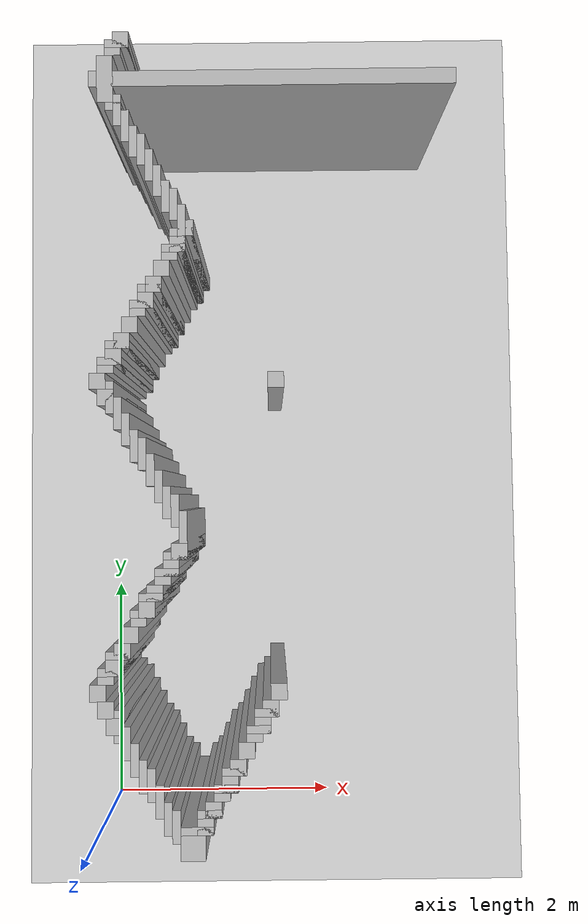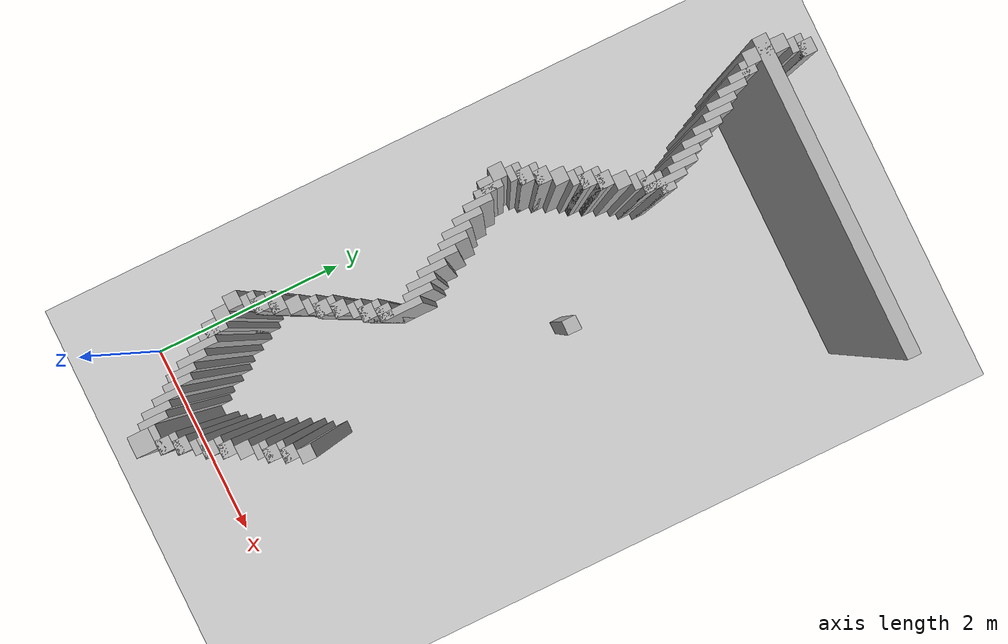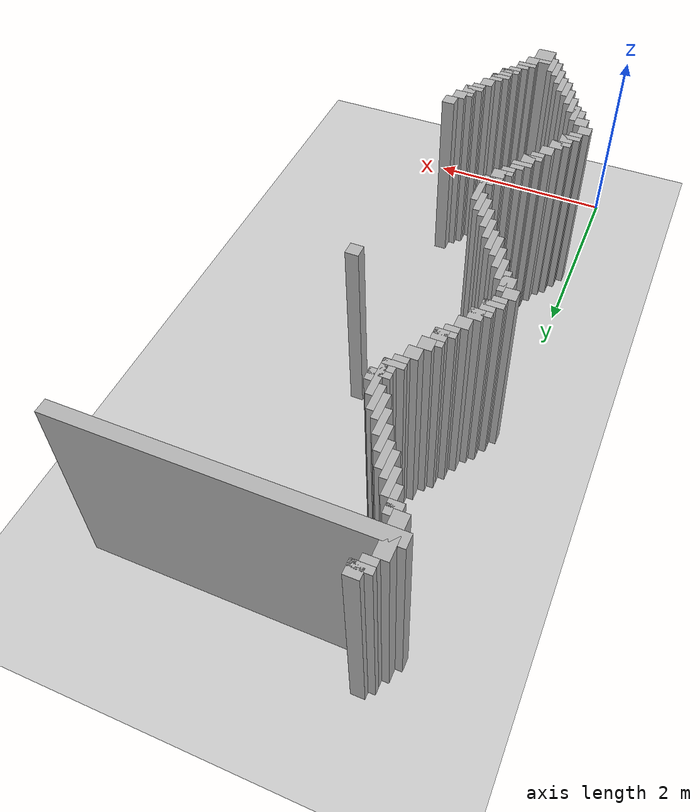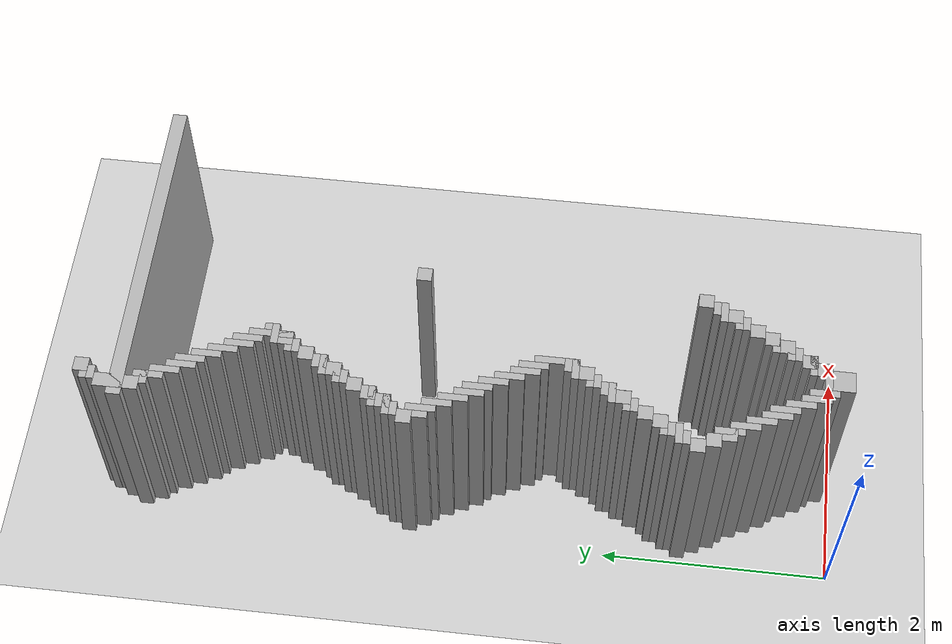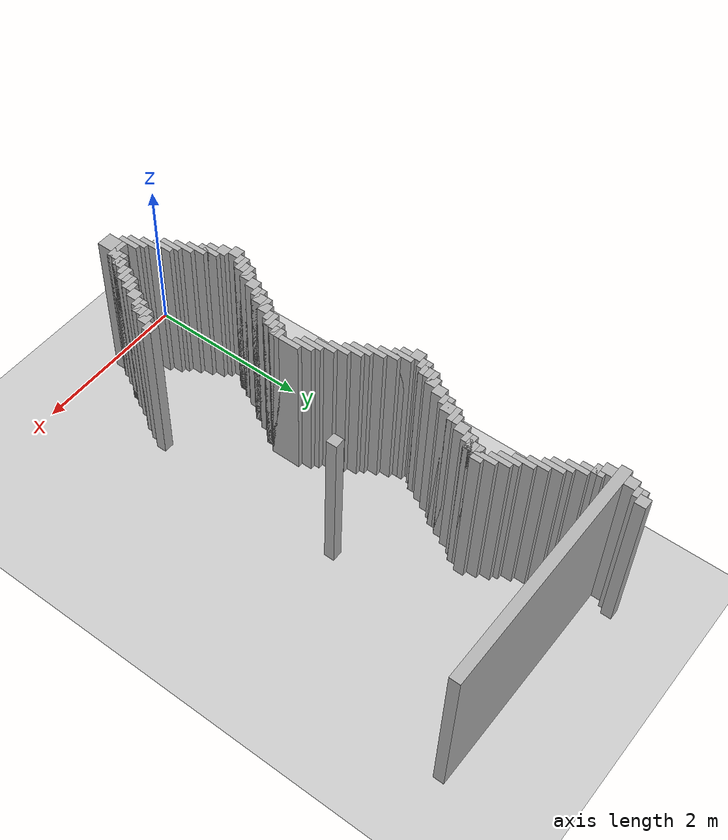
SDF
<sdf version="1.6">
 <world name="slam_world">
  <model name="ground_plane">
   <static>true</static>
   <link name="link">
    <collision name="collision">
     <geometry><plane><normal>0 0 1</normal><size>100 100</size></plane></geometry>
    </collision>
    <visual name="visual">
     <geometry><plane><normal>0 0 1</normal><size>100 100</size></plane></geometry>
     <material>
      <ambient>0.8 0.8 0.8 1</ambient>
      <diffuse>0.8 0.8 0.8 1</diffuse>
      <specular>0.8 0.8 0.8 1</specular>
     </material>
    </visual>
   </link>
  </model>
  <model name="wall_1703">
   <static>true</static>
   <pose>0.3191489361702127 6.51063829787234 1.0 0 0 0</pose>
   <link name="link">
    <collision name="collision">
     <geometry><box><size>0.1276595744680851 0.1276595744680851 2.0</size></box></geometry>
    </collision>
    <visual name="visual">
     <geometry><box><size>0.1276595744680851 0.1276595744680851 2.0</size></box></geometry>
     <material><ambient>0.5 0.5 0.5 1</ambient><diffuse>0.7 0.7 0.7 1</diffuse></material>
    </visual>
   </link>
  </model>
  <model name="wall_1707">
   <static>true</static>
   <pose>0.28723404255319146 6.478723404255319 1.0 0 0 0</pose>
   <link name="link">
    <collision name="collision">
     <geometry><box><size>0.19148936170212766 0.06382978723404255 2.0</size></box></geometry>
    </collision>
    <visual name="visual">
     <geometry><box><size>0.19148936170212766 0.06382978723404255 2.0</size></box></geometry>
     <material><ambient>0.5 0.5 0.5 1</ambient><diffuse>0.7 0.7 0.7 1</diffuse></material>
    </visual>
   </link>
  </model>
  <model name="wall_1715">
   <static>true</static>
   <pose>0.2553191489361702 6.414893617021276 1.0 0 0 0</pose>
   <link name="link">
    <collision name="collision">
     <geometry><box><size>0.1276595744680851 0.06382978723404255 2.0</size></box></geometry>
    </collision>
    <visual name="visual">
     <geometry><box><size>0.1276595744680851 0.06382978723404255 2.0</size></box></geometry>
     <material><ambient>0.5 0.5 0.5 1</ambient><diffuse>0.7 0.7 0.7 1</diffuse></material>
    </visual>
   </link>
  </model>
  <model name="wall_1719">
   <static>true</static>
   <pose>0.19148936170212766 6.191489361702128 1.0 0 0 0</pose>
   <link name="link">
    <collision name="collision">
     <geometry><box><size>0.1276595744680851 0.3829787234042553 2.0</size></box></geometry>
    </collision>
    <visual name="visual">
     <geometry><box><size>0.1276595744680851 0.3829787234042553 2.0</size></box></geometry>
     <material><ambient>0.5 0.5 0.5 1</ambient><diffuse>0.7 0.7 0.7 1</diffuse></material>
    </visual>
   </link>
  </model>
  <model name="wall_1727">
   <static>true</static>
   <pose>1.5319148936170213 6.191489361702128 1.0 0 0 0</pose>
   <link name="link">
    <collision name="collision">
     <geometry><box><size>2.936170212765957 0.1276595744680851 2.0</size></box></geometry>
    </collision>
    <visual name="visual">
     <geometry><box><size>2.936170212765957 0.1276595744680851 2.0</size></box></geometry>
     <material><ambient>0.5 0.5 0.5 1</ambient><diffuse>0.7 0.7 0.7 1</diffuse></material>
    </visual>
   </link>
  </model>
  <model name="wall_1742">
   <static>true</static>
   <pose>0.28723404255319146 5.936170212765957 1.0 0 0 0</pose>
   <link name="link">
    <collision name="collision">
     <geometry><box><size>0.06382978723404255 0.2553191489361702 2.0</size></box></geometry>
    </collision>
    <visual name="visual">
     <geometry><box><size>0.06382978723404255 0.2553191489361702 2.0</size></box></geometry>
     <material><ambient>0.5 0.5 0.5 1</ambient><diffuse>0.7 0.7 0.7 1</diffuse></material>
    </visual>
   </link>
  </model>
  <model name="wall_1749">
   <static>true</static>
   <pose>0.2553191489361702 5.968085106382978 1.0 0 0 0</pose>
   <link name="link">
    <collision name="collision">
     <geometry><box><size>0.1276595744680851 0.06382978723404255 2.0</size></box></geometry>
    </collision>
    <visual name="visual">
     <geometry><box><size>0.1276595744680851 0.06382978723404255 2.0</size></box></geometry>
     <material><ambient>0.5 0.5 0.5 1</ambient><diffuse>0.7 0.7 0.7 1</diffuse></material>
    </visual>
   </link>
  </model>
  <model name="wall_1758">
   <static>true</static>
   <pose>0.351063829787234 5.8085106382978715 1.0 0 0 0</pose>
   <link name="link">
    <collision name="collision">
     <geometry><box><size>0.06382978723404255 0.2553191489361702 2.0</size></box></geometry>
    </collision>
    <visual name="visual">
     <geometry><box><size>0.06382978723404255 0.2553191489361702 2.0</size></box></geometry>
     <material><ambient>0.5 0.5 0.5 1</ambient><diffuse>0.7 0.7 0.7 1</diffuse></material>
    </visual>
   </link>
  </model>
  <model name="wall_1767">
   <static>true</static>
   <pose>0.4148936170212766 5.680851063829786 1.0 0 0 0</pose>
   <link name="link">
    <collision name="collision">
     <geometry><box><size>0.06382978723404255 0.2553191489361702 2.0</size></box></geometry>
    </collision>
    <visual name="visual">
     <geometry><box><size>0.06382978723404255 0.2553191489361702 2.0</size></box></geometry>
     <material><ambient>0.5 0.5 0.5 1</ambient><diffuse>0.7 0.7 0.7 1</diffuse></material>
    </visual>
   </link>
  </model>
  <model name="wall_1776">
   <static>true</static>
   <pose>0.4787234042553191 5.617021276595744 1.0 0 0 0</pose>
   <link name="link">
    <collision name="collision">
     <geometry><box><size>0.06382978723404255 0.2553191489361702 2.0</size></box></geometry>
    </collision>
    <visual name="visual">
     <geometry><box><size>0.06382978723404255 0.2553191489361702 2.0</size></box></geometry>
     <material><ambient>0.5 0.5 0.5 1</ambient><diffuse>0.7 0.7 0.7 1</diffuse></material>
    </visual>
   </link>
  </model>
  <model name="wall_1791">
   <static>true</static>
   <pose>0.5425531914893617 5.489361702127659 1.0 0 0 0</pose>
   <link name="link">
    <collision name="collision">
     <geometry><box><size>0.06382978723404255 0.2553191489361702 2.0</size></box></geometry>
    </collision>
    <visual name="visual">
     <geometry><box><size>0.06382978723404255 0.2553191489361702 2.0</size></box></geometry>
     <material><ambient>0.5 0.5 0.5 1</ambient><diffuse>0.7 0.7 0.7 1</diffuse></material>
    </visual>
   </link>
  </model>
  <model name="wall_1805">
   <static>true</static>
   <pose>0.6063829787234042 5.361702127659574 1.0 0 0 0</pose>
   <link name="link">
    <collision name="collision">
     <geometry><box><size>0.06382978723404255 0.2553191489361702 2.0</size></box></geometry>
    </collision>
    <visual name="visual">
     <geometry><box><size>0.06382978723404255 0.2553191489361702 2.0</size></box></geometry>
     <material><ambient>0.5 0.5 0.5 1</ambient><diffuse>0.7 0.7 0.7 1</diffuse></material>
    </visual>
   </link>
  </model>
  <model name="wall_1819">
   <static>true</static>
   <pose>0.6702127659574467 5.234042553191489 1.0 0 0 0</pose>
   <link name="link">
    <collision name="collision">
     <geometry><box><size>0.06382978723404255 0.2553191489361702 2.0</size></box></geometry>
    </collision>
    <visual name="visual">
     <geometry><box><size>0.06382978723404255 0.2553191489361702 2.0</size></box></geometry>
     <material><ambient>0.5 0.5 0.5 1</ambient><diffuse>0.7 0.7 0.7 1</diffuse></material>
    </visual>
   </link>
  </model>
  <model name="wall_1828">
   <static>true</static>
   <pose>0.7340425531914893 5.170212765957446 1.0 0 0 0</pose>
   <link name="link">
    <collision name="collision">
     <geometry><box><size>0.06382978723404255 0.2553191489361702 2.0</size></box></geometry>
    </collision>
    <visual name="visual">
     <geometry><box><size>0.06382978723404255 0.2553191489361702 2.0</size></box></geometry>
     <material><ambient>0.5 0.5 0.5 1</ambient><diffuse>0.7 0.7 0.7 1</diffuse></material>
    </visual>
   </link>
  </model>
  <model name="wall_1842">
   <static>true</static>
   <pose>0.7978723404255319 4.978723404255319 1.0 0 0 0</pose>
   <link name="link">
    <collision name="collision">
     <geometry><box><size>0.06382978723404255 0.3829787234042553 2.0</size></box></geometry>
    </collision>
    <visual name="visual">
     <geometry><box><size>0.06382978723404255 0.3829787234042553 2.0</size></box></geometry>
     <material><ambient>0.5 0.5 0.5 1</ambient><diffuse>0.7 0.7 0.7 1</diffuse></material>
    </visual>
   </link>
  </model>
  <model name="wall_1856">
   <static>true</static>
   <pose>0.8617021276595744 4.978723404255319 1.0 0 0 0</pose>
   <link name="link">
    <collision name="collision">
     <geometry><box><size>0.06382978723404255 0.1276595744680851 2.0</size></box></geometry>
    </collision>
    <visual name="visual">
     <geometry><box><size>0.06382978723404255 0.1276595744680851 2.0</size></box></geometry>
     <material><ambient>0.5 0.5 0.5 1</ambient><diffuse>0.7 0.7 0.7 1</diffuse></material>
    </visual>
   </link>
  </model>
  <model name="wall_1862">
   <static>true</static>
   <pose>0.7978723404255319 4.946808510638298 1.0 0 0 0</pose>
   <link name="link">
    <collision name="collision">
     <geometry><box><size>0.19148936170212766 0.06382978723404255 2.0</size></box></geometry>
    </collision>
    <visual name="visual">
     <geometry><box><size>0.19148936170212766 0.06382978723404255 2.0</size></box></geometry>
     <material><ambient>0.5 0.5 0.5 1</ambient><diffuse>0.7 0.7 0.7 1</diffuse></material>
    </visual>
   </link>
  </model>
  <model name="wall_1867">
   <static>true</static>
   <pose>0.7659574468085106 4.8510638297872335 1.0 0 0 0</pose>
   <link name="link">
    <collision name="collision">
     <geometry><box><size>0.1276595744680851 0.1276595744680851 2.0</size></box></geometry>
    </collision>
    <visual name="visual">
     <geometry><box><size>0.1276595744680851 0.1276595744680851 2.0</size></box></geometry>
     <material><ambient>0.5 0.5 0.5 1</ambient><diffuse>0.7 0.7 0.7 1</diffuse></material>
    </visual>
   </link>
  </model>
  <model name="wall_1872">
   <static>true</static>
   <pose>0.7340425531914893 4.819148936170213 1.0 0 0 0</pose>
   <link name="link">
    <collision name="collision">
     <geometry><box><size>0.19148936170212766 0.06382978723404255 2.0</size></box></geometry>
    </collision>
    <visual name="visual">
     <geometry><box><size>0.19148936170212766 0.06382978723404255 2.0</size></box></geometry>
     <material><ambient>0.5 0.5 0.5 1</ambient><diffuse>0.7 0.7 0.7 1</diffuse></material>
    </visual>
   </link>
  </model>
  <model name="wall_1877">
   <static>true</static>
   <pose>0.702127659574468 4.75531914893617 1.0 0 0 0</pose>
   <link name="link">
    <collision name="collision">
     <geometry><box><size>0.1276595744680851 0.06382978723404255 2.0</size></box></geometry>
    </collision>
    <visual name="visual">
     <geometry><box><size>0.1276595744680851 0.06382978723404255 2.0</size></box></geometry>
     <material><ambient>0.5 0.5 0.5 1</ambient><diffuse>0.7 0.7 0.7 1</diffuse></material>
    </visual>
   </link>
  </model>
  <model name="wall_1883">
   <static>true</static>
   <pose>0.6382978723404255 4.659574468085106 1.0 0 0 0</pose>
   <link name="link">
    <collision name="collision">
     <geometry><box><size>0.1276595744680851 0.1276595744680851 2.0</size></box></geometry>
    </collision>
    <visual name="visual">
     <geometry><box><size>0.1276595744680851 0.1276595744680851 2.0</size></box></geometry>
     <material><ambient>0.5 0.5 0.5 1</ambient><diffuse>0.7 0.7 0.7 1</diffuse></material>
    </visual>
   </link>
  </model>
  <model name="wall_1889">
   <static>true</static>
   <pose>0.5744680851063829 4.531914893617021 1.0 0 0 0</pose>
   <link name="link">
    <collision name="collision">
     <geometry><box><size>0.1276595744680851 0.1276595744680851 2.0</size></box></geometry>
    </collision>
    <visual name="visual">
     <geometry><box><size>0.1276595744680851 0.1276595744680851 2.0</size></box></geometry>
     <material><ambient>0.5 0.5 0.5 1</ambient><diffuse>0.7 0.7 0.7 1</diffuse></material>
    </visual>
   </link>
  </model>
  <model name="wall_1895">
   <static>true</static>
   <pose>0.5425531914893617 4.5 1.0 0 0 0</pose>
   <link name="link">
    <collision name="collision">
     <geometry><box><size>0.19148936170212766 0.06382978723404255 2.0</size></box></geometry>
    </collision>
    <visual name="visual">
     <geometry><box><size>0.19148936170212766 0.06382978723404255 2.0</size></box></geometry>
     <material><ambient>0.5 0.5 0.5 1</ambient><diffuse>0.7 0.7 0.7 1</diffuse></material>
    </visual>
   </link>
  </model>
  <model name="wall_1901">
   <static>true</static>
   <pose>0.5106382978723404 4.404255319148936 1.0 0 0 0</pose>
   <link name="link">
    <collision name="collision">
     <geometry><box><size>0.1276595744680851 0.1276595744680851 2.0</size></box></geometry>
    </collision>
    <visual name="visual">
     <geometry><box><size>0.1276595744680851 0.1276595744680851 2.0</size></box></geometry>
     <material><ambient>0.5 0.5 0.5 1</ambient><diffuse>0.7 0.7 0.7 1</diffuse></material>
    </visual>
   </link>
  </model>
  <model name="wall_1907">
   <static>true</static>
   <pose>0.4787234042553191 4.372340425531915 1.0 0 0 0</pose>
   <link name="link">
    <collision name="collision">
     <geometry><box><size>0.19148936170212766 0.06382978723404255 2.0</size></box></geometry>
    </collision>
    <visual name="visual">
     <geometry><box><size>0.19148936170212766 0.06382978723404255 2.0</size></box></geometry>
     <material><ambient>0.5 0.5 0.5 1</ambient><diffuse>0.7 0.7 0.7 1</diffuse></material>
    </visual>
   </link>
  </model>
  <model name="wall_1913">
   <static>true</static>
   <pose>0.44680851063829785 4.308510638297872 1.0 0 0 0</pose>
   <link name="link">
    <collision name="collision">
     <geometry><box><size>0.1276595744680851 0.06382978723404255 2.0</size></box></geometry>
    </collision>
    <visual name="visual">
     <geometry><box><size>0.1276595744680851 0.06382978723404255 2.0</size></box></geometry>
     <material><ambient>0.5 0.5 0.5 1</ambient><diffuse>0.7 0.7 0.7 1</diffuse></material>
    </visual>
   </link>
  </model>
  <model name="wall_1918">
   <static>true</static>
   <pose>0.3829787234042553 4.212765957446808 1.0 0 0 0</pose>
   <link name="link">
    <collision name="collision">
     <geometry><box><size>0.1276595744680851 0.1276595744680851 2.0</size></box></geometry>
    </collision>
    <visual name="visual">
     <geometry><box><size>0.1276595744680851 0.1276595744680851 2.0</size></box></geometry>
     <material><ambient>0.5 0.5 0.5 1</ambient><diffuse>0.7 0.7 0.7 1</diffuse></material>
    </visual>
   </link>
  </model>
  <model name="wall_1924">
   <static>true</static>
   <pose>0.3191489361702127 4.085106382978723 1.0 0 0 0</pose>
   <link name="link">
    <collision name="collision">
     <geometry><box><size>0.1276595744680851 0.1276595744680851 2.0</size></box></geometry>
    </collision>
    <visual name="visual">
     <geometry><box><size>0.1276595744680851 0.1276595744680851 2.0</size></box></geometry>
     <material><ambient>0.5 0.5 0.5 1</ambient><diffuse>0.7 0.7 0.7 1</diffuse></material>
    </visual>
   </link>
  </model>
  <model name="wall_1930">
   <static>true</static>
   <pose>0.28723404255319146 4.053191489361701 1.0 0 0 0</pose>
   <link name="link">
    <collision name="collision">
     <geometry><box><size>0.19148936170212766 0.06382978723404255 2.0</size></box></geometry>
    </collision>
    <visual name="visual">
     <geometry><box><size>0.19148936170212766 0.06382978723404255 2.0</size></box></geometry>
     <material><ambient>0.5 0.5 0.5 1</ambient><diffuse>0.7 0.7 0.7 1</diffuse></material>
    </visual>
   </link>
  </model>
  <model name="wall_1936">
   <static>true</static>
   <pose>0.2553191489361702 3.957446808510638 1.0 0 0 0</pose>
   <link name="link">
    <collision name="collision">
     <geometry><box><size>0.1276595744680851 0.1276595744680851 2.0</size></box></geometry>
    </collision>
    <visual name="visual">
     <geometry><box><size>0.1276595744680851 0.1276595744680851 2.0</size></box></geometry>
     <material><ambient>0.5 0.5 0.5 1</ambient><diffuse>0.7 0.7 0.7 1</diffuse></material>
    </visual>
   </link>
  </model>
  <model name="wall_1941">
   <static>true</static>
   <pose>0.22340425531914893 3.9255319148936167 1.0 0 0 0</pose>
   <link name="link">
    <collision name="collision">
     <geometry><box><size>0.19148936170212766 0.06382978723404255 2.0</size></box></geometry>
    </collision>
    <visual name="visual">
     <geometry><box><size>0.19148936170212766 0.06382978723404255 2.0</size></box></geometry>
     <material><ambient>0.5 0.5 0.5 1</ambient><diffuse>0.7 0.7 0.7 1</diffuse></material>
    </visual>
   </link>
  </model>
  <model name="wall_1947">
   <static>true</static>
   <pose>0.19148936170212766 3.861702127659574 1.0 0 0 0</pose>
   <link name="link">
    <collision name="collision">
     <geometry><box><size>0.1276595744680851 0.06382978723404255 2.0</size></box></geometry>
    </collision>
    <visual name="visual">
     <geometry><box><size>0.1276595744680851 0.06382978723404255 2.0</size></box></geometry>
     <material><ambient>0.5 0.5 0.5 1</ambient><diffuse>0.7 0.7 0.7 1</diffuse></material>
    </visual>
   </link>
  </model>
  <model name="wall_1952">
   <static>true</static>
   <pose>0.1276595744680851 3.7659574468085104 1.0 0 0 0</pose>
   <link name="link">
    <collision name="collision">
     <geometry><box><size>0.1276595744680851 0.1276595744680851 2.0</size></box></geometry>
    </collision>
    <visual name="visual">
     <geometry><box><size>0.1276595744680851 0.1276595744680851 2.0</size></box></geometry>
     <material><ambient>0.5 0.5 0.5 1</ambient><diffuse>0.7 0.7 0.7 1</diffuse></material>
    </visual>
   </link>
  </model>
  <model name="wall_1953">
   <static>true</static>
   <pose>1.5319148936170213 3.7659574468085104 1.0 0 0 0</pose>
   <link name="link">
    <collision name="collision">
     <geometry><box><size>0.1276595744680851 0.1276595744680851 2.0</size></box></geometry>
    </collision>
    <visual name="visual">
     <geometry><box><size>0.1276595744680851 0.1276595744680851 2.0</size></box></geometry>
     <material><ambient>0.5 0.5 0.5 1</ambient><diffuse>0.7 0.7 0.7 1</diffuse></material>
    </visual>
   </link>
  </model>
  <model name="wall_1958">
   <static>true</static>
   <pose>0.22340425531914893 3.6382978723404253 1.0 0 0 0</pose>
   <link name="link">
    <collision name="collision">
     <geometry><box><size>0.06382978723404255 0.2553191489361702 2.0</size></box></geometry>
    </collision>
    <visual name="visual">
     <geometry><box><size>0.06382978723404255 0.2553191489361702 2.0</size></box></geometry>
     <material><ambient>0.5 0.5 0.5 1</ambient><diffuse>0.7 0.7 0.7 1</diffuse></material>
    </visual>
   </link>
  </model>
  <model name="wall_1962">
   <static>true</static>
   <pose>0.19148936170212766 3.6382978723404253 1.0 0 0 0</pose>
   <link name="link">
    <collision name="collision">
     <geometry><box><size>0.1276595744680851 0.1276595744680851 2.0</size></box></geometry>
    </collision>
    <visual name="visual">
     <geometry><box><size>0.1276595744680851 0.1276595744680851 2.0</size></box></geometry>
     <material><ambient>0.5 0.5 0.5 1</ambient><diffuse>0.7 0.7 0.7 1</diffuse></material>
    </visual>
   </link>
  </model>
  <model name="wall_1968">
   <static>true</static>
   <pose>0.28723404255319146 3.5106382978723403 1.0 0 0 0</pose>
   <link name="link">
    <collision name="collision">
     <geometry><box><size>0.06382978723404255 0.2553191489361702 2.0</size></box></geometry>
    </collision>
    <visual name="visual">
     <geometry><box><size>0.06382978723404255 0.2553191489361702 2.0</size></box></geometry>
     <material><ambient>0.5 0.5 0.5 1</ambient><diffuse>0.7 0.7 0.7 1</diffuse></material>
    </visual>
   </link>
  </model>
  <model name="wall_1979">
   <static>true</static>
   <pose>0.351063829787234 3.382978723404255 1.0 0 0 0</pose>
   <link name="link">
    <collision name="collision">
     <geometry><box><size>0.06382978723404255 0.2553191489361702 2.0</size></box></geometry>
    </collision>
    <visual name="visual">
     <geometry><box><size>0.06382978723404255 0.2553191489361702 2.0</size></box></geometry>
     <material><ambient>0.5 0.5 0.5 1</ambient><diffuse>0.7 0.7 0.7 1</diffuse></material>
    </visual>
   </link>
  </model>
  <model name="wall_1986">
   <static>true</static>
   <pose>0.4148936170212766 3.25531914893617 1.0 0 0 0</pose>
   <link name="link">
    <collision name="collision">
     <geometry><box><size>0.06382978723404255 0.2553191489361702 2.0</size></box></geometry>
    </collision>
    <visual name="visual">
     <geometry><box><size>0.06382978723404255 0.2553191489361702 2.0</size></box></geometry>
     <material><ambient>0.5 0.5 0.5 1</ambient><diffuse>0.7 0.7 0.7 1</diffuse></material>
    </visual>
   </link>
  </model>
  <model name="wall_1993">
   <static>true</static>
   <pose>0.4787234042553191 3.1914893617021276 1.0 0 0 0</pose>
   <link name="link">
    <collision name="collision">
     <geometry><box><size>0.06382978723404255 0.2553191489361702 2.0</size></box></geometry>
    </collision>
    <visual name="visual">
     <geometry><box><size>0.06382978723404255 0.2553191489361702 2.0</size></box></geometry>
     <material><ambient>0.5 0.5 0.5 1</ambient><diffuse>0.7 0.7 0.7 1</diffuse></material>
    </visual>
   </link>
  </model>
  <model name="wall_2001">
   <static>true</static>
   <pose>0.5425531914893617 3.0638297872340425 1.0 0 0 0</pose>
   <link name="link">
    <collision name="collision">
     <geometry><box><size>0.06382978723404255 0.2553191489361702 2.0</size></box></geometry>
    </collision>
    <visual name="visual">
     <geometry><box><size>0.06382978723404255 0.2553191489361702 2.0</size></box></geometry>
     <material><ambient>0.5 0.5 0.5 1</ambient><diffuse>0.7 0.7 0.7 1</diffuse></material>
    </visual>
   </link>
  </model>
  <model name="wall_2009">
   <static>true</static>
   <pose>0.6063829787234042 2.936170212765957 1.0 0 0 0</pose>
   <link name="link">
    <collision name="collision">
     <geometry><box><size>0.06382978723404255 0.2553191489361702 2.0</size></box></geometry>
    </collision>
    <visual name="visual">
     <geometry><box><size>0.06382978723404255 0.2553191489361702 2.0</size></box></geometry>
     <material><ambient>0.5 0.5 0.5 1</ambient><diffuse>0.7 0.7 0.7 1</diffuse></material>
    </visual>
   </link>
  </model>
  <model name="wall_2016">
   <static>true</static>
   <pose>0.6702127659574467 2.808510638297872 1.0 0 0 0</pose>
   <link name="link">
    <collision name="collision">
     <geometry><box><size>0.06382978723404255 0.2553191489361702 2.0</size></box></geometry>
    </collision>
    <visual name="visual">
     <geometry><box><size>0.06382978723404255 0.2553191489361702 2.0</size></box></geometry>
     <material><ambient>0.5 0.5 0.5 1</ambient><diffuse>0.7 0.7 0.7 1</diffuse></material>
    </visual>
   </link>
  </model>
  <model name="wall_2023">
   <static>true</static>
   <pose>0.7340425531914893 2.7446808510638294 1.0 0 0 0</pose>
   <link name="link">
    <collision name="collision">
     <geometry><box><size>0.06382978723404255 0.2553191489361702 2.0</size></box></geometry>
    </collision>
    <visual name="visual">
     <geometry><box><size>0.06382978723404255 0.2553191489361702 2.0</size></box></geometry>
     <material><ambient>0.5 0.5 0.5 1</ambient><diffuse>0.7 0.7 0.7 1</diffuse></material>
    </visual>
   </link>
  </model>
  <model name="wall_2031">
   <static>true</static>
   <pose>0.7978723404255319 2.553191489361702 1.0 0 0 0</pose>
   <link name="link">
    <collision name="collision">
     <geometry><box><size>0.06382978723404255 0.3829787234042553 2.0</size></box></geometry>
    </collision>
    <visual name="visual">
     <geometry><box><size>0.06382978723404255 0.3829787234042553 2.0</size></box></geometry>
     <material><ambient>0.5 0.5 0.5 1</ambient><diffuse>0.7 0.7 0.7 1</diffuse></material>
    </visual>
   </link>
  </model>
  <model name="wall_2046">
   <static>true</static>
   <pose>0.7659574468085106 2.4255319148936167 1.0 0 0 0</pose>
   <link name="link">
    <collision name="collision">
     <geometry><box><size>0.1276595744680851 0.1276595744680851 2.0</size></box></geometry>
    </collision>
    <visual name="visual">
     <geometry><box><size>0.1276595744680851 0.1276595744680851 2.0</size></box></geometry>
     <material><ambient>0.5 0.5 0.5 1</ambient><diffuse>0.7 0.7 0.7 1</diffuse></material>
    </visual>
   </link>
  </model>
  <model name="wall_2052">
   <static>true</static>
   <pose>0.7340425531914893 2.3936170212765955 1.0 0 0 0</pose>
   <link name="link">
    <collision name="collision">
     <geometry><box><size>0.19148936170212766 0.06382978723404255 2.0</size></box></geometry>
    </collision>
    <visual name="visual">
     <geometry><box><size>0.19148936170212766 0.06382978723404255 2.0</size></box></geometry>
     <material><ambient>0.5 0.5 0.5 1</ambient><diffuse>0.7 0.7 0.7 1</diffuse></material>
    </visual>
   </link>
  </model>
  <model name="wall_2058">
   <static>true</static>
   <pose>0.702127659574468 2.2978723404255317 1.0 0 0 0</pose>
   <link name="link">
    <collision name="collision">
     <geometry><box><size>0.1276595744680851 0.1276595744680851 2.0</size></box></geometry>
    </collision>
    <visual name="visual">
     <geometry><box><size>0.1276595744680851 0.1276595744680851 2.0</size></box></geometry>
     <material><ambient>0.5 0.5 0.5 1</ambient><diffuse>0.7 0.7 0.7 1</diffuse></material>
    </visual>
   </link>
  </model>
  <model name="wall_2063">
   <static>true</static>
   <pose>0.6702127659574467 2.2659574468085104 1.0 0 0 0</pose>
   <link name="link">
    <collision name="collision">
     <geometry><box><size>0.19148936170212766 0.06382978723404255 2.0</size></box></geometry>
    </collision>
    <visual name="visual">
     <geometry><box><size>0.19148936170212766 0.06382978723404255 2.0</size></box></geometry>
     <material><ambient>0.5 0.5 0.5 1</ambient><diffuse>0.7 0.7 0.7 1</diffuse></material>
    </visual>
   </link>
  </model>
  <model name="wall_2069">
   <static>true</static>
   <pose>0.6382978723404255 2.202127659574468 1.0 0 0 0</pose>
   <link name="link">
    <collision name="collision">
     <geometry><box><size>0.1276595744680851 0.06382978723404255 2.0</size></box></geometry>
    </collision>
    <visual name="visual">
     <geometry><box><size>0.1276595744680851 0.06382978723404255 2.0</size></box></geometry>
     <material><ambient>0.5 0.5 0.5 1</ambient><diffuse>0.7 0.7 0.7 1</diffuse></material>
    </visual>
   </link>
  </model>
  <model name="wall_2071">
   <static>true</static>
   <pose>0.5744680851063829 2.106382978723404 1.0 0 0 0</pose>
   <link name="link">
    <collision name="collision">
     <geometry><box><size>0.1276595744680851 0.1276595744680851 2.0</size></box></geometry>
    </collision>
    <visual name="visual">
     <geometry><box><size>0.1276595744680851 0.1276595744680851 2.0</size></box></geometry>
     <material><ambient>0.5 0.5 0.5 1</ambient><diffuse>0.7 0.7 0.7 1</diffuse></material>
    </visual>
   </link>
  </model>
  <model name="wall_2077">
   <static>true</static>
   <pose>0.5425531914893617 2.074468085106383 1.0 0 0 0</pose>
   <link name="link">
    <collision name="collision">
     <geometry><box><size>0.19148936170212766 0.06382978723404255 2.0</size></box></geometry>
    </collision>
    <visual name="visual">
     <geometry><box><size>0.19148936170212766 0.06382978723404255 2.0</size></box></geometry>
     <material><ambient>0.5 0.5 0.5 1</ambient><diffuse>0.7 0.7 0.7 1</diffuse></material>
    </visual>
   </link>
  </model>
  <model name="wall_2083">
   <static>true</static>
   <pose>0.5106382978723404 1.978723404255319 1.0 0 0 0</pose>
   <link name="link">
    <collision name="collision">
     <geometry><box><size>0.1276595744680851 0.1276595744680851 2.0</size></box></geometry>
    </collision>
    <visual name="visual">
     <geometry><box><size>0.1276595744680851 0.1276595744680851 2.0</size></box></geometry>
     <material><ambient>0.5 0.5 0.5 1</ambient><diffuse>0.7 0.7 0.7 1</diffuse></material>
    </visual>
   </link>
  </model>
  <model name="wall_2085">
   <static>true</static>
   <pose>0.4787234042553191 1.9468085106382977 1.0 0 0 0</pose>
   <link name="link">
    <collision name="collision">
     <geometry><box><size>0.19148936170212766 0.06382978723404255 2.0</size></box></geometry>
    </collision>
    <visual name="visual">
     <geometry><box><size>0.19148936170212766 0.06382978723404255 2.0</size></box></geometry>
     <material><ambient>0.5 0.5 0.5 1</ambient><diffuse>0.7 0.7 0.7 1</diffuse></material>
    </visual>
   </link>
  </model>
  <model name="wall_2091">
   <static>true</static>
   <pose>0.44680851063829785 1.8829787234042552 1.0 0 0 0</pose>
   <link name="link">
    <collision name="collision">
     <geometry><box><size>0.1276595744680851 0.06382978723404255 2.0</size></box></geometry>
    </collision>
    <visual name="visual">
     <geometry><box><size>0.1276595744680851 0.06382978723404255 2.0</size></box></geometry>
     <material><ambient>0.5 0.5 0.5 1</ambient><diffuse>0.7 0.7 0.7 1</diffuse></material>
    </visual>
   </link>
  </model>
  <model name="wall_2093">
   <static>true</static>
   <pose>0.3829787234042553 1.7872340425531914 1.0 0 0 0</pose>
   <link name="link">
    <collision name="collision">
     <geometry><box><size>0.1276595744680851 0.1276595744680851 2.0</size></box></geometry>
    </collision>
    <visual name="visual">
     <geometry><box><size>0.1276595744680851 0.1276595744680851 2.0</size></box></geometry>
     <material><ambient>0.5 0.5 0.5 1</ambient><diffuse>0.7 0.7 0.7 1</diffuse></material>
    </visual>
   </link>
  </model>
  <model name="wall_2099">
   <static>true</static>
   <pose>0.3191489361702127 1.6595744680851063 1.0 0 0 0</pose>
   <link name="link">
    <collision name="collision">
     <geometry><box><size>0.1276595744680851 0.1276595744680851 2.0</size></box></geometry>
    </collision>
    <visual name="visual">
     <geometry><box><size>0.1276595744680851 0.1276595744680851 2.0</size></box></geometry>
     <material><ambient>0.5 0.5 0.5 1</ambient><diffuse>0.7 0.7 0.7 1</diffuse></material>
    </visual>
   </link>
  </model>
  <model name="wall_2105">
   <static>true</static>
   <pose>0.28723404255319146 1.627659574468085 1.0 0 0 0</pose>
   <link name="link">
    <collision name="collision">
     <geometry><box><size>0.19148936170212766 0.06382978723404255 2.0</size></box></geometry>
    </collision>
    <visual name="visual">
     <geometry><box><size>0.19148936170212766 0.06382978723404255 2.0</size></box></geometry>
     <material><ambient>0.5 0.5 0.5 1</ambient><diffuse>0.7 0.7 0.7 1</diffuse></material>
    </visual>
   </link>
  </model>
  <model name="wall_2111">
   <static>true</static>
   <pose>0.2553191489361702 1.5319148936170213 1.0 0 0 0</pose>
   <link name="link">
    <collision name="collision">
     <geometry><box><size>0.1276595744680851 0.1276595744680851 2.0</size></box></geometry>
    </collision>
    <visual name="visual">
     <geometry><box><size>0.1276595744680851 0.1276595744680851 2.0</size></box></geometry>
     <material><ambient>0.5 0.5 0.5 1</ambient><diffuse>0.7 0.7 0.7 1</diffuse></material>
    </visual>
   </link>
  </model>
  <model name="wall_2113">
   <static>true</static>
   <pose>0.22340425531914893 1.4999999999999998 1.0 0 0 0</pose>
   <link name="link">
    <collision name="collision">
     <geometry><box><size>0.19148936170212766 0.06382978723404255 2.0</size></box></geometry>
    </collision>
    <visual name="visual">
     <geometry><box><size>0.19148936170212766 0.06382978723404255 2.0</size></box></geometry>
     <material><ambient>0.5 0.5 0.5 1</ambient><diffuse>0.7 0.7 0.7 1</diffuse></material>
    </visual>
   </link>
  </model>
  <model name="wall_2119">
   <static>true</static>
   <pose>0.19148936170212766 1.4361702127659572 1.0 0 0 0</pose>
   <link name="link">
    <collision name="collision">
     <geometry><box><size>0.1276595744680851 0.06382978723404255 2.0</size></box></geometry>
    </collision>
    <visual name="visual">
     <geometry><box><size>0.1276595744680851 0.06382978723404255 2.0</size></box></geometry>
     <material><ambient>0.5 0.5 0.5 1</ambient><diffuse>0.7 0.7 0.7 1</diffuse></material>
    </visual>
   </link>
  </model>
  <model name="wall_2121">
   <static>true</static>
   <pose>0.1276595744680851 1.3404255319148934 1.0 0 0 0</pose>
   <link name="link">
    <collision name="collision">
     <geometry><box><size>0.1276595744680851 0.1276595744680851 2.0</size></box></geometry>
    </collision>
    <visual name="visual">
     <geometry><box><size>0.1276595744680851 0.1276595744680851 2.0</size></box></geometry>
     <material><ambient>0.5 0.5 0.5 1</ambient><diffuse>0.7 0.7 0.7 1</diffuse></material>
    </visual>
   </link>
  </model>
  <model name="wall_2122">
   <static>true</static>
   <pose>1.5319148936170213 1.3404255319148934 1.0 0 0 0</pose>
   <link name="link">
    <collision name="collision">
     <geometry><box><size>0.1276595744680851 0.1276595744680851 2.0</size></box></geometry>
    </collision>
    <visual name="visual">
     <geometry><box><size>0.1276595744680851 0.1276595744680851 2.0</size></box></geometry>
     <material><ambient>0.5 0.5 0.5 1</ambient><diffuse>0.7 0.7 0.7 1</diffuse></material>
    </visual>
   </link>
  </model>
  <model name="wall_2132">
   <static>true</static>
   <pose>0.19148936170212766 1.2127659574468084 1.0 0 0 0</pose>
   <link name="link">
    <collision name="collision">
     <geometry><box><size>0.1276595744680851 0.1276595744680851 2.0</size></box></geometry>
    </collision>
    <visual name="visual">
     <geometry><box><size>0.1276595744680851 0.1276595744680851 2.0</size></box></geometry>
     <material><ambient>0.5 0.5 0.5 1</ambient><diffuse>0.7 0.7 0.7 1</diffuse></material>
    </visual>
   </link>
  </model>
  <model name="wall_2133">
   <static>true</static>
   <pose>1.4680851063829785 1.2127659574468084 1.0 0 0 0</pose>
   <link name="link">
    <collision name="collision">
     <geometry><box><size>0.1276595744680851 0.1276595744680851 2.0</size></box></geometry>
    </collision>
    <visual name="visual">
     <geometry><box><size>0.1276595744680851 0.1276595744680851 2.0</size></box></geometry>
     <material><ambient>0.5 0.5 0.5 1</ambient><diffuse>0.7 0.7 0.7 1</diffuse></material>
    </visual>
   </link>
  </model>
  <model name="wall_2140">
   <static>true</static>
   <pose>0.28723404255319146 1.0851063829787233 1.0 0 0 0</pose>
   <link name="link">
    <collision name="collision">
     <geometry><box><size>0.06382978723404255 0.2553191489361702 2.0</size></box></geometry>
    </collision>
    <visual name="visual">
     <geometry><box><size>0.06382978723404255 0.2553191489361702 2.0</size></box></geometry>
     <material><ambient>0.5 0.5 0.5 1</ambient><diffuse>0.7 0.7 0.7 1</diffuse></material>
    </visual>
   </link>
  </model>
  <model name="wall_2141">
   <static>true</static>
   <pose>1.4361702127659572 1.180851063829787 1.0 0 0 0</pose>
   <link name="link">
    <collision name="collision">
     <geometry><box><size>0.19148936170212766 0.06382978723404255 2.0</size></box></geometry>
    </collision>
    <visual name="visual">
     <geometry><box><size>0.19148936170212766 0.06382978723404255 2.0</size></box></geometry>
     <material><ambient>0.5 0.5 0.5 1</ambient><diffuse>0.7 0.7 0.7 1</diffuse></material>
    </visual>
   </link>
  </model>
  <model name="wall_2148">
   <static>true</static>
   <pose>0.2553191489361702 1.0851063829787233 1.0 0 0 0</pose>
   <link name="link">
    <collision name="collision">
     <geometry><box><size>0.1276595744680851 0.1276595744680851 2.0</size></box></geometry>
    </collision>
    <visual name="visual">
     <geometry><box><size>0.1276595744680851 0.1276595744680851 2.0</size></box></geometry>
     <material><ambient>0.5 0.5 0.5 1</ambient><diffuse>0.7 0.7 0.7 1</diffuse></material>
    </visual>
   </link>
  </model>
  <model name="wall_2149">
   <static>true</static>
   <pose>1.404255319148936 1.0851063829787233 1.0 0 0 0</pose>
   <link name="link">
    <collision name="collision">
     <geometry><box><size>0.1276595744680851 0.1276595744680851 2.0</size></box></geometry>
    </collision>
    <visual name="visual">
     <geometry><box><size>0.1276595744680851 0.1276595744680851 2.0</size></box></geometry>
     <material><ambient>0.5 0.5 0.5 1</ambient><diffuse>0.7 0.7 0.7 1</diffuse></material>
    </visual>
   </link>
  </model>
  <model name="wall_2155">
   <static>true</static>
   <pose>0.351063829787234 0.9574468085106382 1.0 0 0 0</pose>
   <link name="link">
    <collision name="collision">
     <geometry><box><size>0.06382978723404255 0.2553191489361702 2.0</size></box></geometry>
    </collision>
    <visual name="visual">
     <geometry><box><size>0.06382978723404255 0.2553191489361702 2.0</size></box></geometry>
     <material><ambient>0.5 0.5 0.5 1</ambient><diffuse>0.7 0.7 0.7 1</diffuse></material>
    </visual>
   </link>
  </model>
  <model name="wall_2156">
   <static>true</static>
   <pose>1.3723404255319147 1.053191489361702 1.0 0 0 0</pose>
   <link name="link">
    <collision name="collision">
     <geometry><box><size>0.19148936170212766 0.06382978723404255 2.0</size></box></geometry>
    </collision>
    <visual name="visual">
     <geometry><box><size>0.19148936170212766 0.06382978723404255 2.0</size></box></geometry>
     <material><ambient>0.5 0.5 0.5 1</ambient><diffuse>0.7 0.7 0.7 1</diffuse></material>
    </visual>
   </link>
  </model>
  <model name="wall_2163">
   <static>true</static>
   <pose>1.3404255319148934 0.9893617021276595 1.0 0 0 0</pose>
   <link name="link">
    <collision name="collision">
     <geometry><box><size>0.1276595744680851 0.06382978723404255 2.0</size></box></geometry>
    </collision>
    <visual name="visual">
     <geometry><box><size>0.1276595744680851 0.06382978723404255 2.0</size></box></geometry>
     <material><ambient>0.5 0.5 0.5 1</ambient><diffuse>0.7 0.7 0.7 1</diffuse></material>
    </visual>
   </link>
  </model>
  <model name="wall_2166">
   <static>true</static>
   <pose>0.4148936170212766 0.8297872340425532 1.0 0 0 0</pose>
   <link name="link">
    <collision name="collision">
     <geometry><box><size>0.06382978723404255 0.2553191489361702 2.0</size></box></geometry>
    </collision>
    <visual name="visual">
     <geometry><box><size>0.06382978723404255 0.2553191489361702 2.0</size></box></geometry>
     <material><ambient>0.5 0.5 0.5 1</ambient><diffuse>0.7 0.7 0.7 1</diffuse></material>
    </visual>
   </link>
  </model>
  <model name="wall_2167">
   <static>true</static>
   <pose>1.276595744680851 0.8936170212765957 1.0 0 0 0</pose>
   <link name="link">
    <collision name="collision">
     <geometry><box><size>0.1276595744680851 0.1276595744680851 2.0</size></box></geometry>
    </collision>
    <visual name="visual">
     <geometry><box><size>0.1276595744680851 0.1276595744680851 2.0</size></box></geometry>
     <material><ambient>0.5 0.5 0.5 1</ambient><diffuse>0.7 0.7 0.7 1</diffuse></material>
    </visual>
   </link>
  </model>
  <model name="wall_2174">
   <static>true</static>
   <pose>0.4787234042553191 0.702127659574468 1.0 0 0 0</pose>
   <link name="link">
    <collision name="collision">
     <geometry><box><size>0.06382978723404255 0.2553191489361702 2.0</size></box></geometry>
    </collision>
    <visual name="visual">
     <geometry><box><size>0.06382978723404255 0.2553191489361702 2.0</size></box></geometry>
     <material><ambient>0.5 0.5 0.5 1</ambient><diffuse>0.7 0.7 0.7 1</diffuse></material>
    </visual>
   </link>
  </model>
  <model name="wall_2175">
   <static>true</static>
   <pose>1.2127659574468084 0.7659574468085106 1.0 0 0 0</pose>
   <link name="link">
    <collision name="collision">
     <geometry><box><size>0.1276595744680851 0.1276595744680851 2.0</size></box></geometry>
    </collision>
    <visual name="visual">
     <geometry><box><size>0.1276595744680851 0.1276595744680851 2.0</size></box></geometry>
     <material><ambient>0.5 0.5 0.5 1</ambient><diffuse>0.7 0.7 0.7 1</diffuse></material>
    </visual>
   </link>
  </model>
  <model name="wall_2182">
   <static>true</static>
   <pose>0.5425531914893617 0.6382978723404255 1.0 0 0 0</pose>
   <link name="link">
    <collision name="collision">
     <geometry><box><size>0.06382978723404255 0.2553191489361702 2.0</size></box></geometry>
    </collision>
    <visual name="visual">
     <geometry><box><size>0.06382978723404255 0.2553191489361702 2.0</size></box></geometry>
     <material><ambient>0.5 0.5 0.5 1</ambient><diffuse>0.7 0.7 0.7 1</diffuse></material>
    </visual>
   </link>
  </model>
  <model name="wall_2183">
   <static>true</static>
   <pose>1.180851063829787 0.7340425531914893 1.0 0 0 0</pose>
   <link name="link">
    <collision name="collision">
     <geometry><box><size>0.19148936170212766 0.06382978723404255 2.0</size></box></geometry>
    </collision>
    <visual name="visual">
     <geometry><box><size>0.19148936170212766 0.06382978723404255 2.0</size></box></geometry>
     <material><ambient>0.5 0.5 0.5 1</ambient><diffuse>0.7 0.7 0.7 1</diffuse></material>
    </visual>
   </link>
  </model>
  <model name="wall_2190">
   <static>true</static>
   <pose>1.1489361702127658 0.6382978723404255 1.0 0 0 0</pose>
   <link name="link">
    <collision name="collision">
     <geometry><box><size>0.1276595744680851 0.1276595744680851 2.0</size></box></geometry>
    </collision>
    <visual name="visual">
     <geometry><box><size>0.1276595744680851 0.1276595744680851 2.0</size></box></geometry>
     <material><ambient>0.5 0.5 0.5 1</ambient><diffuse>0.7 0.7 0.7 1</diffuse></material>
    </visual>
   </link>
  </model>
  <model name="wall_2193">
   <static>true</static>
   <pose>0.6063829787234042 0.5106382978723404 1.0 0 0 0</pose>
   <link name="link">
    <collision name="collision">
     <geometry><box><size>0.06382978723404255 0.2553191489361702 2.0</size></box></geometry>
    </collision>
    <visual name="visual">
     <geometry><box><size>0.06382978723404255 0.2553191489361702 2.0</size></box></geometry>
     <material><ambient>0.5 0.5 0.5 1</ambient><diffuse>0.7 0.7 0.7 1</diffuse></material>
    </visual>
   </link>
  </model>
  <model name="wall_2194">
   <static>true</static>
   <pose>1.1170212765957446 0.6063829787234042 1.0 0 0 0</pose>
   <link name="link">
    <collision name="collision">
     <geometry><box><size>0.19148936170212766 0.06382978723404255 2.0</size></box></geometry>
    </collision>
    <visual name="visual">
     <geometry><box><size>0.19148936170212766 0.06382978723404255 2.0</size></box></geometry>
     <material><ambient>0.5 0.5 0.5 1</ambient><diffuse>0.7 0.7 0.7 1</diffuse></material>
    </visual>
   </link>
  </model>
  <model name="wall_2201">
   <static>true</static>
   <pose>1.0851063829787233 0.5425531914893617 1.0 0 0 0</pose>
   <link name="link">
    <collision name="collision">
     <geometry><box><size>0.1276595744680851 0.06382978723404255 2.0</size></box></geometry>
    </collision>
    <visual name="visual">
     <geometry><box><size>0.1276595744680851 0.06382978723404255 2.0</size></box></geometry>
     <material><ambient>0.5 0.5 0.5 1</ambient><diffuse>0.7 0.7 0.7 1</diffuse></material>
    </visual>
   </link>
  </model>
  <model name="wall_2204">
   <static>true</static>
   <pose>0.6702127659574467 0.3829787234042553 1.0 0 0 0</pose>
   <link name="link">
    <collision name="collision">
     <geometry><box><size>0.06382978723404255 0.2553191489361702 2.0</size></box></geometry>
    </collision>
    <visual name="visual">
     <geometry><box><size>0.06382978723404255 0.2553191489361702 2.0</size></box></geometry>
     <material><ambient>0.5 0.5 0.5 1</ambient><diffuse>0.7 0.7 0.7 1</diffuse></material>
    </visual>
   </link>
  </model>
  <model name="wall_2205">
   <static>true</static>
   <pose>1.0212765957446808 0.44680851063829785 1.0 0 0 0</pose>
   <link name="link">
    <collision name="collision">
     <geometry><box><size>0.1276595744680851 0.1276595744680851 2.0</size></box></geometry>
    </collision>
    <visual name="visual">
     <geometry><box><size>0.1276595744680851 0.1276595744680851 2.0</size></box></geometry>
     <material><ambient>0.5 0.5 0.5 1</ambient><diffuse>0.7 0.7 0.7 1</diffuse></material>
    </visual>
   </link>
  </model>
  <model name="wall_2212">
   <static>true</static>
   <pose>0.7340425531914893 0.3191489361702127 1.0 0 0 0</pose>
   <link name="link">
    <collision name="collision">
     <geometry><box><size>0.06382978723404255 0.2553191489361702 2.0</size></box></geometry>
    </collision>
    <visual name="visual">
     <geometry><box><size>0.06382978723404255 0.2553191489361702 2.0</size></box></geometry>
     <material><ambient>0.5 0.5 0.5 1</ambient><diffuse>0.7 0.7 0.7 1</diffuse></material>
    </visual>
   </link>
  </model>
  <model name="wall_2213">
   <static>true</static>
   <pose>0.9893617021276595 0.4148936170212766 1.0 0 0 0</pose>
   <link name="link">
    <collision name="collision">
     <geometry><box><size>0.19148936170212766 0.06382978723404255 2.0</size></box></geometry>
    </collision>
    <visual name="visual">
     <geometry><box><size>0.19148936170212766 0.06382978723404255 2.0</size></box></geometry>
     <material><ambient>0.5 0.5 0.5 1</ambient><diffuse>0.7 0.7 0.7 1</diffuse></material>
    </visual>
   </link>
  </model>
  <model name="wall_2220">
   <static>true</static>
   <pose>0.9574468085106382 0.3191489361702127 1.0 0 0 0</pose>
   <link name="link">
    <collision name="collision">
     <geometry><box><size>0.1276595744680851 0.1276595744680851 2.0</size></box></geometry>
    </collision>
    <visual name="visual">
     <geometry><box><size>0.1276595744680851 0.1276595744680851 2.0</size></box></geometry>
     <material><ambient>0.5 0.5 0.5 1</ambient><diffuse>0.7 0.7 0.7 1</diffuse></material>
    </visual>
   </link>
  </model>
  <model name="wall_2223">
   <static>true</static>
   <pose>0.8936170212765957 0.28723404255319146 1.0 0 0 0</pose>
   <link name="link">
    <collision name="collision">
     <geometry><box><size>0.2553191489361702 0.06382978723404255 2.0</size></box></geometry>
    </collision>
    <visual name="visual">
     <geometry><box><size>0.2553191489361702 0.06382978723404255 2.0</size></box></geometry>
     <material><ambient>0.5 0.5 0.5 1</ambient><diffuse>0.7 0.7 0.7 1</diffuse></material>
    </visual>
   </link>
  </model>
  <model name="wall_2230">
   <static>true</static>
   <pose>0.8617021276595744 0.15957446808510636 1.0 0 0 0</pose>
   <link name="link">
    <collision name="collision">
     <geometry><box><size>0.19148936170212766 0.19148936170212766 2.0</size></box></geometry>
    </collision>
    <visual name="visual">
     <geometry><box><size>0.19148936170212766 0.19148936170212766 2.0</size></box></geometry>
     <material><ambient>0.5 0.5 0.5 1</ambient><diffuse>0.7 0.7 0.7 1</diffuse></material>
    </visual>
   </link>
  </model>
 </world>
</sdf>
